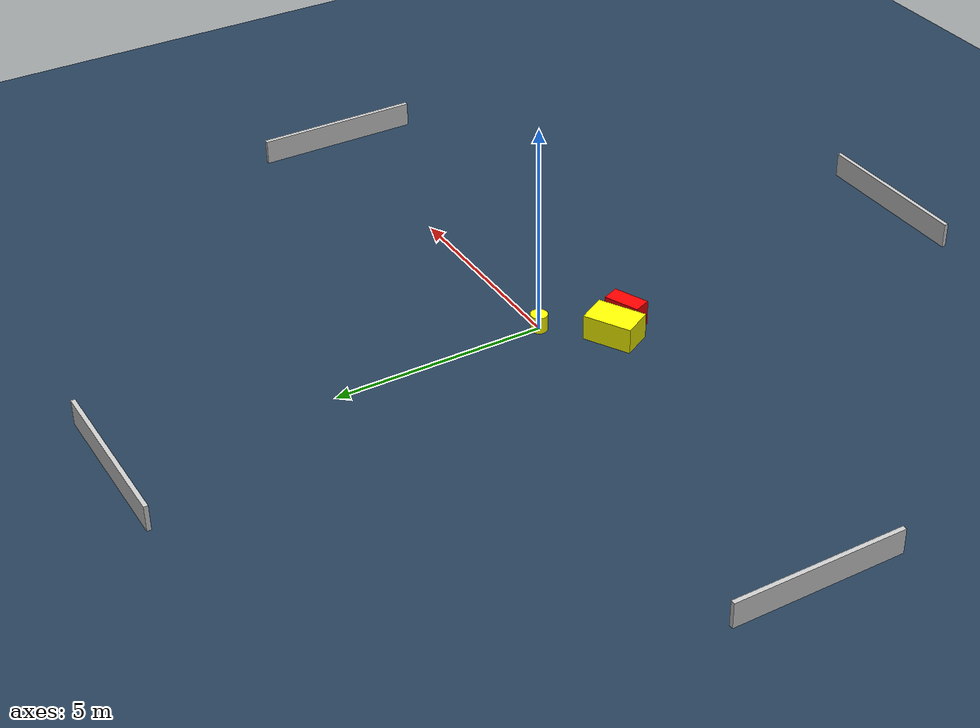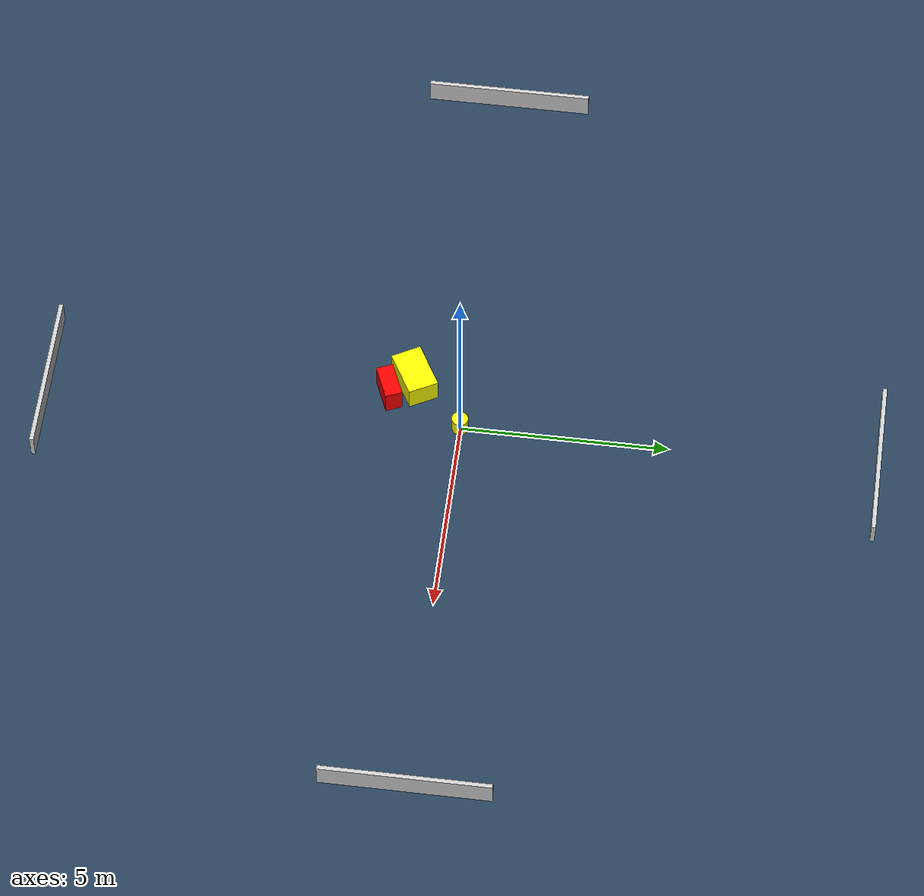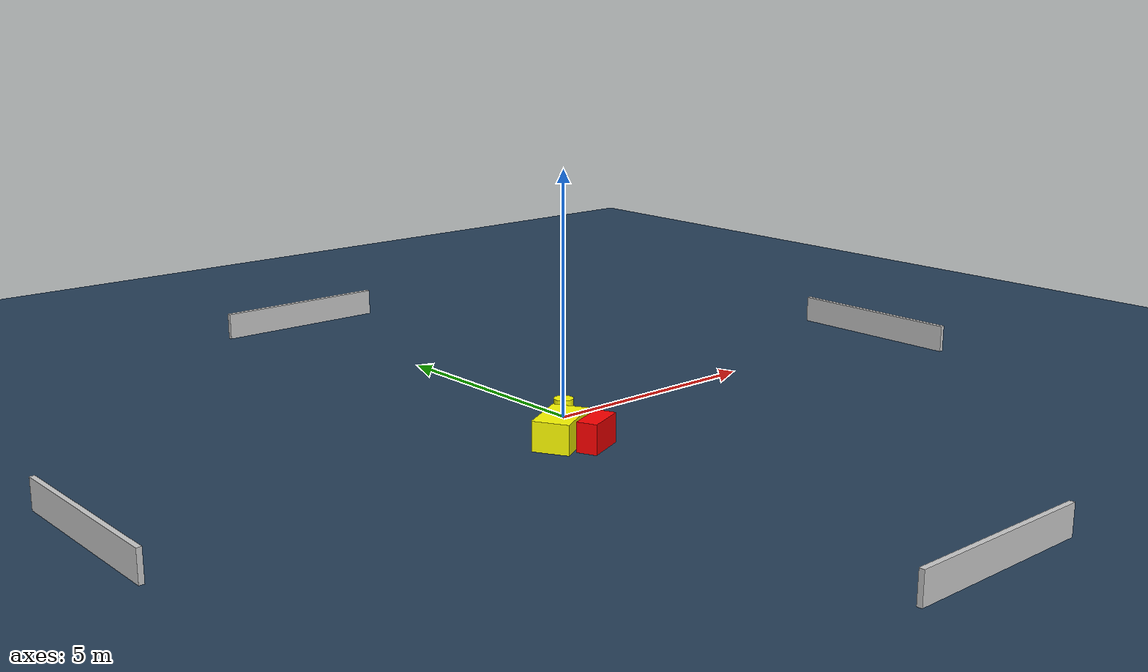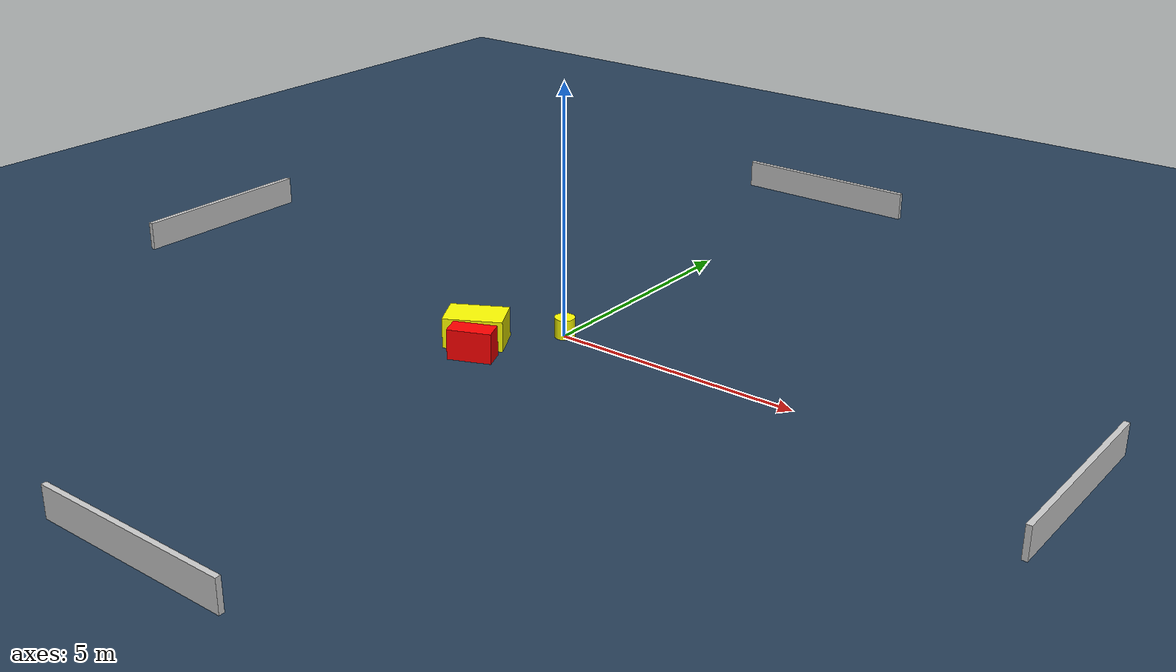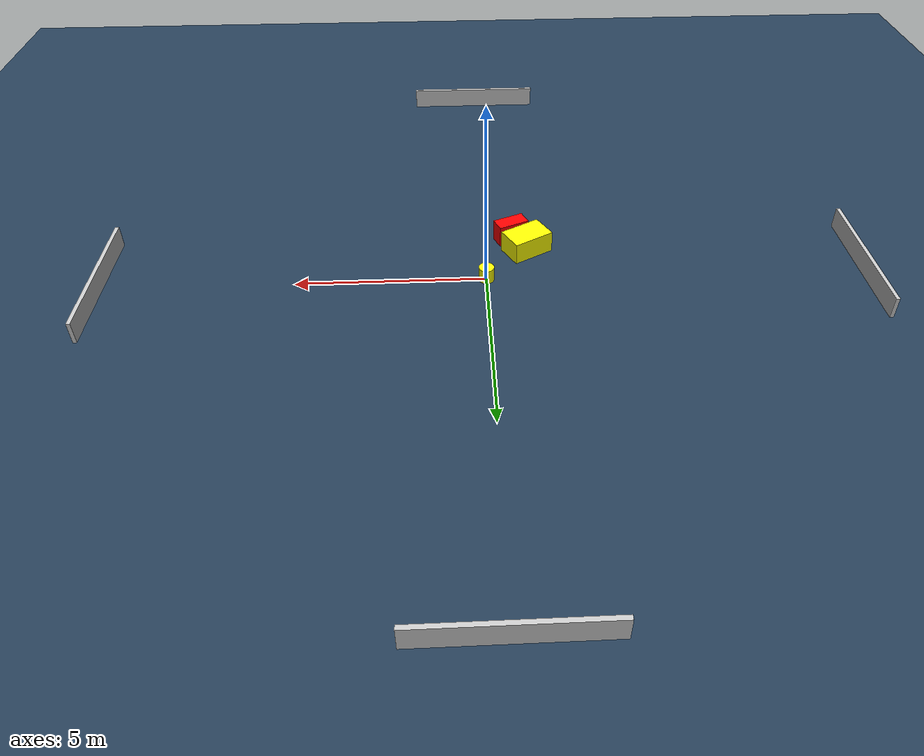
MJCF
<?xml version="1.0" ?>
<mujoco model="generated_environment">
  <option timestep="0.01" integrator="RK4" cone="elliptic"/>
  <default>
    <geom density="1"/>
  </default>
  <asset>
    <texture builtin="gradient" height="3072" name="skybox" rgb1="0.3 0.5 0.7" rgb2="0 0 0" type="skybox" width="512"/>
    <texture builtin="checker" height="300" name="groundplane" rgb1="0.2 0.3 0.4" rgb2="0.1 0.2 0.3" type="2d" width="300"/>
    <material name="groundplane" reflectance="0.2" texrepeat="5 5" texture="groundplane"/>
  </asset>
  <worldbody>
    <light dir="0 0 -1" directional="true" pos="0 0 1.5"/>
    <geom condim="3" friction="0.5 0.005 0.001" material="groundplane" name="floor" pos="0 0 0" size="0 0 0.05" type="plane"/>
    <body name="walls">
      <geom name="wall_1" condim="4" pos="-10.0 0.0 0.3" rgba="0.800000011920929 0.800000011920929 0.800000011920929 1.0" size="0.05 2.0 0.3" type="box"/>
      <geom name="wall_2" condim="4" pos="10.0 0.0 0.3" rgba="0.800000011920929 0.800000011920929 0.800000011920929 1.0" size="0.05 2.0 0.3" type="box"/>
      <geom name="wall_3" condim="4" pos="0.0 -10.0 0.3" rgba="0.800000011920929 0.800000011920929 0.800000011920929 1.0" size="2.0 0.05 0.3" type="box"/>
      <geom name="wall_4" condim="4" pos="0.0 10.0 0.3" rgba="0.800000011920929 0.800000011920929 0.800000011920929 1.0" size="2.0 0.05 0.3" type="box"/>
    </body>
    <body name="robot">
      <joint name="joint_x" type="slide" pos="0 0 0" axis="1 0 0"/>
      <joint name="joint_y" type="slide" pos="0 0 0" axis="0 1 0"/>
      <geom name="robot" type="cylinder" pos="0.0 0.0 0.2" size="0.2 0.2 0.0" mass="5.0" friction="1.0 0.005 0.0001" condim="4" rgba="1.0 1.0 0.0 1.0"/>
    </body>
    <body name="obstacle_1_movable">
      <geom name="obstacle_1_movable" condim="4" pos="-1.1524503385823486 -1.2409593207001104 0.3" euler="0 0 119.19651089251855" friction="0.0 0.005 0.001" rgba="1.0 1.0 0.0 1.0" size="0.3731459154318477 0.577826213551023 0.3" type="box" mass="0.1"/>
      <joint type="free"/>
    </body>
    <body name="obstacle_2_static">
      <geom name="obstacle_2_static" condim="4" pos="-0.7572787232894015 -1.806406754833068 0.3" euler="0 0 112.68233461483152" friction="0.0 0.005 0.001" rgba="1.0 0.0 0.0 1.0" size="0.20736163686890602 0.4304952731981934 0.3" type="box"/>
    </body>
  </worldbody>
  <actuator>
    <motor name="actuator_x" joint="joint_x" gear="1" ctrlrange="-1 1"/>
    <motor name="actuator_y" joint="joint_y" gear="1" ctrlrange="-1 1"/>
  </actuator>
</mujoco>
